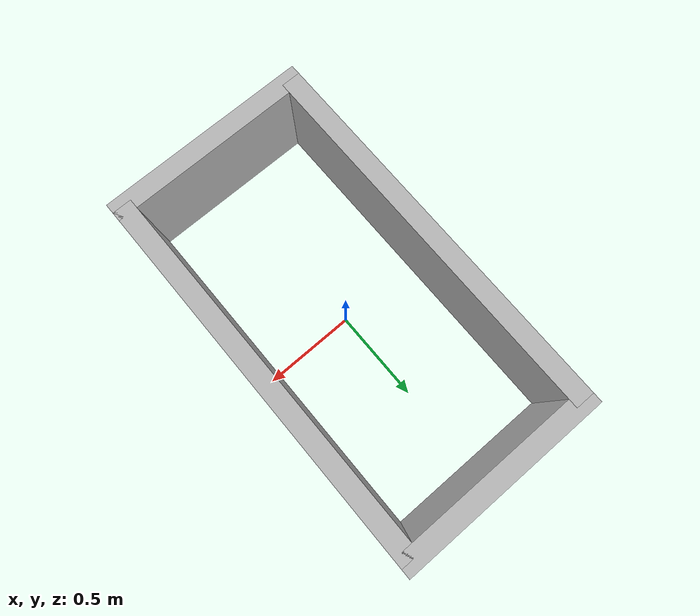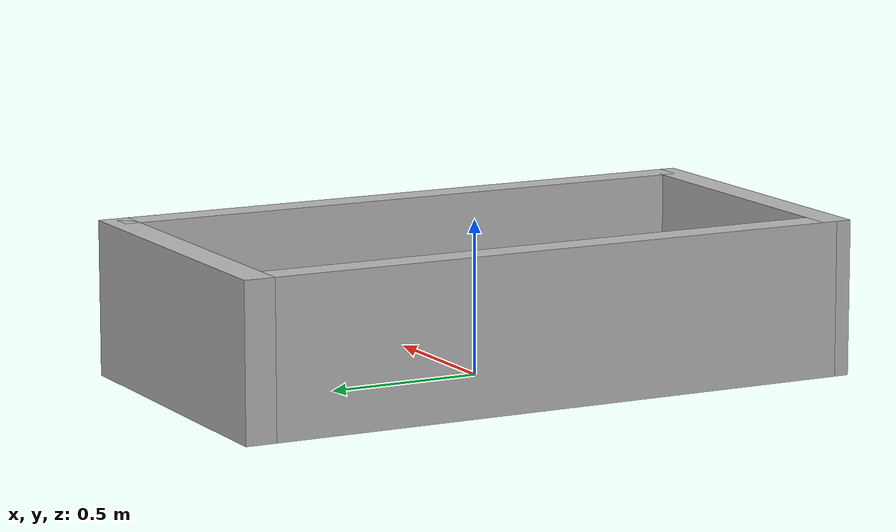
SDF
<?xml version='1.0'?>
<sdf version='1.4'>
  <model name="walls">
    <pose>0 0 0.25 0 0 0</pose>
    <static>true</static>
    <link name="wall_1">
      <pose>0 1 0 0 0 1.57</pose>
      <collision name="collision_1">
        <geometry>
          <box>
            <size>0.1 1.1 0.5</size>
          </box>
        </geometry>
      </collision>
      <visual name="visual_1">
        <geometry>
          <box>
            <size>0.1 1.1 0.5</size>
          </box>
        </geometry>
      </visual>
    </link>
    <link name="wall_2">
      <pose>0 -1 0 0 0 1.57</pose>
      <collision name="collision_2">
        <geometry>
          <box>
            <size>0.1 1.1 0.5</size>
          </box>
        </geometry>
      </collision>
      <visual name="visual_2">
        <geometry>
          <box>
            <size>0.1 1.1 0.5</size>
          </box>
        </geometry>
      </visual>
    </link>
    <link name="wall_3">
      <pose>-0.5 0 0 0 0 0</pose>
      <collision name="collision_3">
        <geometry>
          <box>
            <size>0.1 2 0.5</size>
          </box>
        </geometry>
      </collision>
      <visual name="visual_3">
        <geometry>
          <box>
            <size>0.1 2 0.5</size>
          </box>
        </geometry>
      </visual>
    </link>
    <link name="wall_4">
      <pose>0.5 0 0 0 0 0</pose>
      <collision name="collision_4">
        <geometry>
          <box>
            <size>0.1 2 0.5</size>
          </box>
        </geometry>
      </collision>
      <visual name="visual_4">
        <geometry>
          <box>
            <size>0.1 2 0.5</size>
          </box>
        </geometry>
      </visual>
    </link>
  </model>
</sdf>
